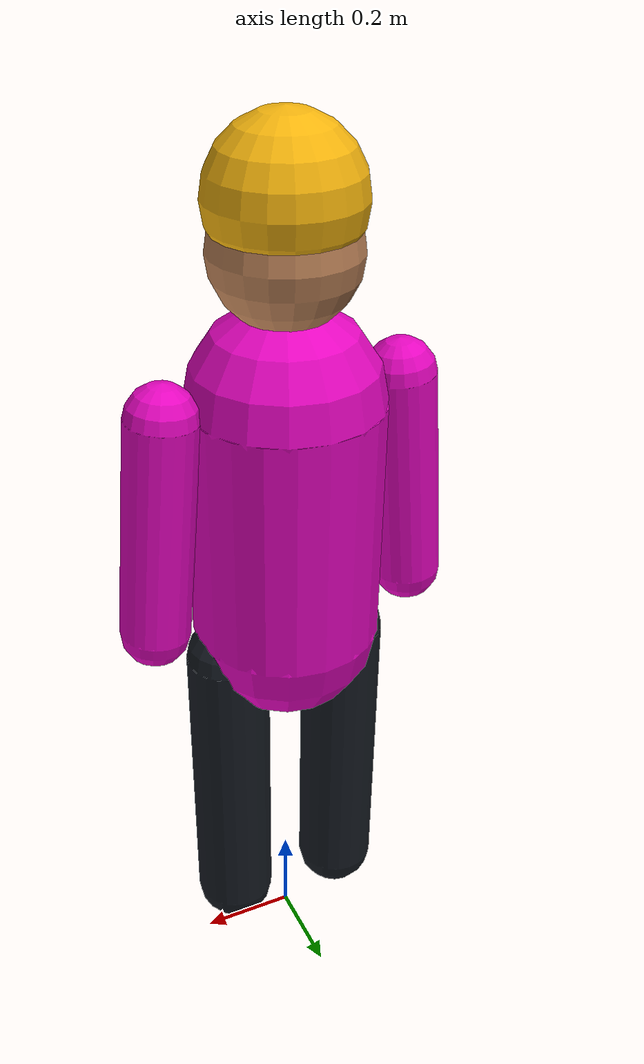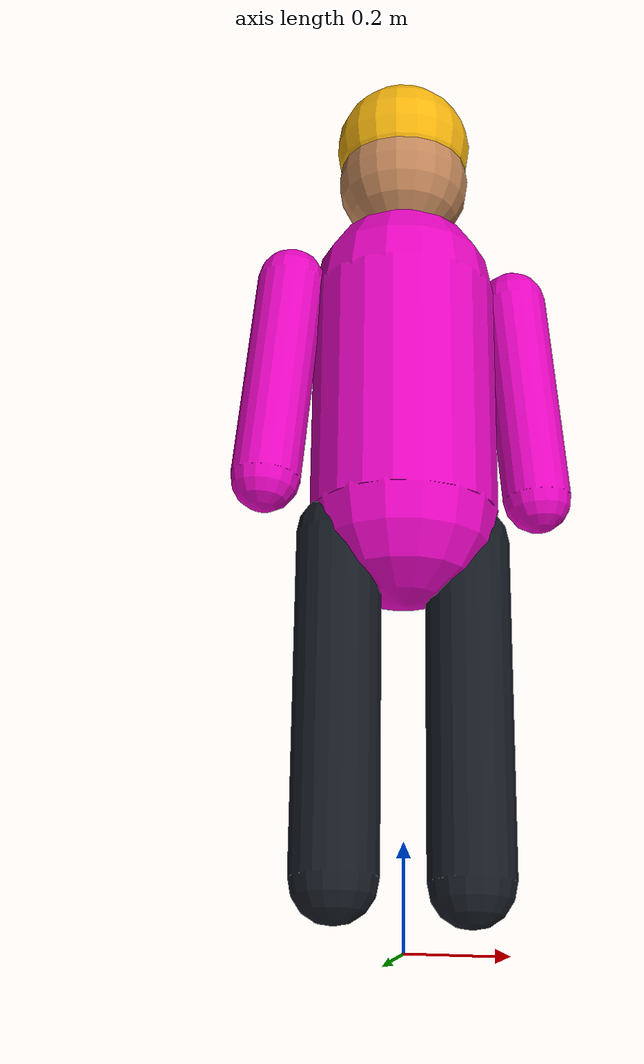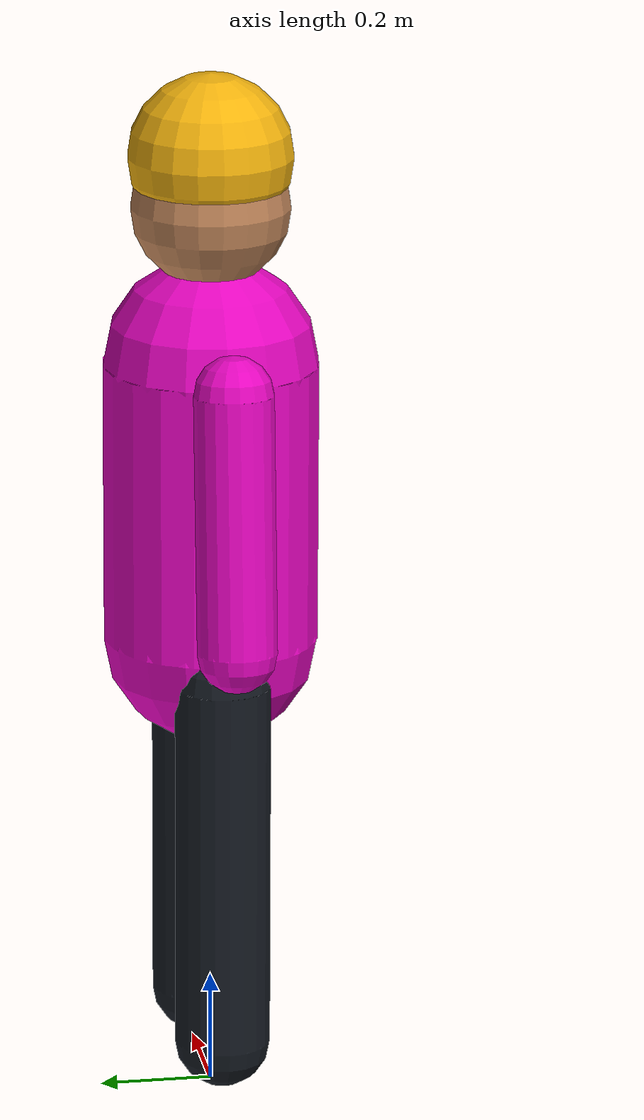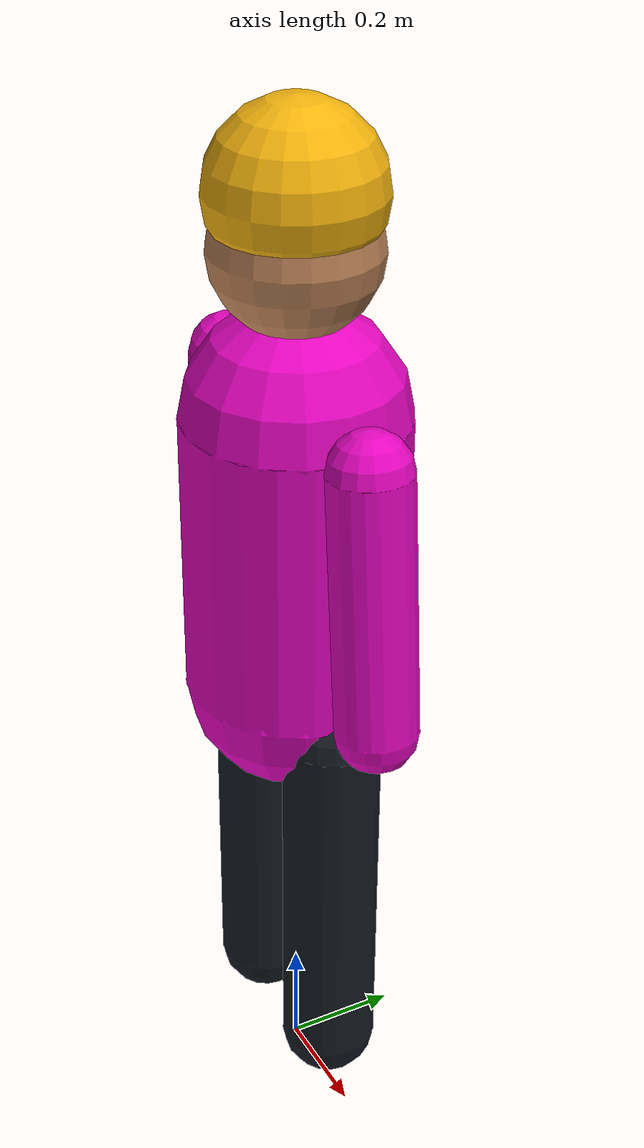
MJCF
<mujoco model="lingtu_rgbd_person_fixture">
  <compiler angle="radian"/>
  <worldbody>
    <body name="proxy_root" mocap="true">
      <!-- A conspicuous shirt isolates RGB-D tracking from learned recognition. -->
      <geom name="torso" type="capsule" fromto="0 0 0.85 0 0 1.35" size="0.19" rgba="0.9 0.02 0.75 1"/>
      <geom name="head" type="sphere" pos="0 0 1.63" size="0.14" rgba="0.75 0.52 0.35 1"/>
      <geom name="helmet" type="sphere" pos="0 0 1.72" size="0.145" rgba="0.95 0.7 0.05 1"/>
      <geom name="left_leg" type="capsule" fromto="-0.13 0 0.8 -0.13 0 0.13" size="0.085" rgba="0.08 0.1 0.13 1"/>
      <geom name="right_leg" type="capsule" fromto="0.13 0 0.8 0.13 0 0.13" size="0.085" rgba="0.08 0.1 0.13 1"/>
      <geom name="left_arm" type="capsule" fromto="-0.24 0 1.36 -0.28 0 0.91" size="0.07" rgba="0.9 0.02 0.75 1"/>
      <geom name="right_arm" type="capsule" fromto="0.24 0 1.36 0.28 0 0.91" size="0.07" rgba="0.9 0.02 0.75 1"/>
    </body>
  </worldbody>
</mujoco>
